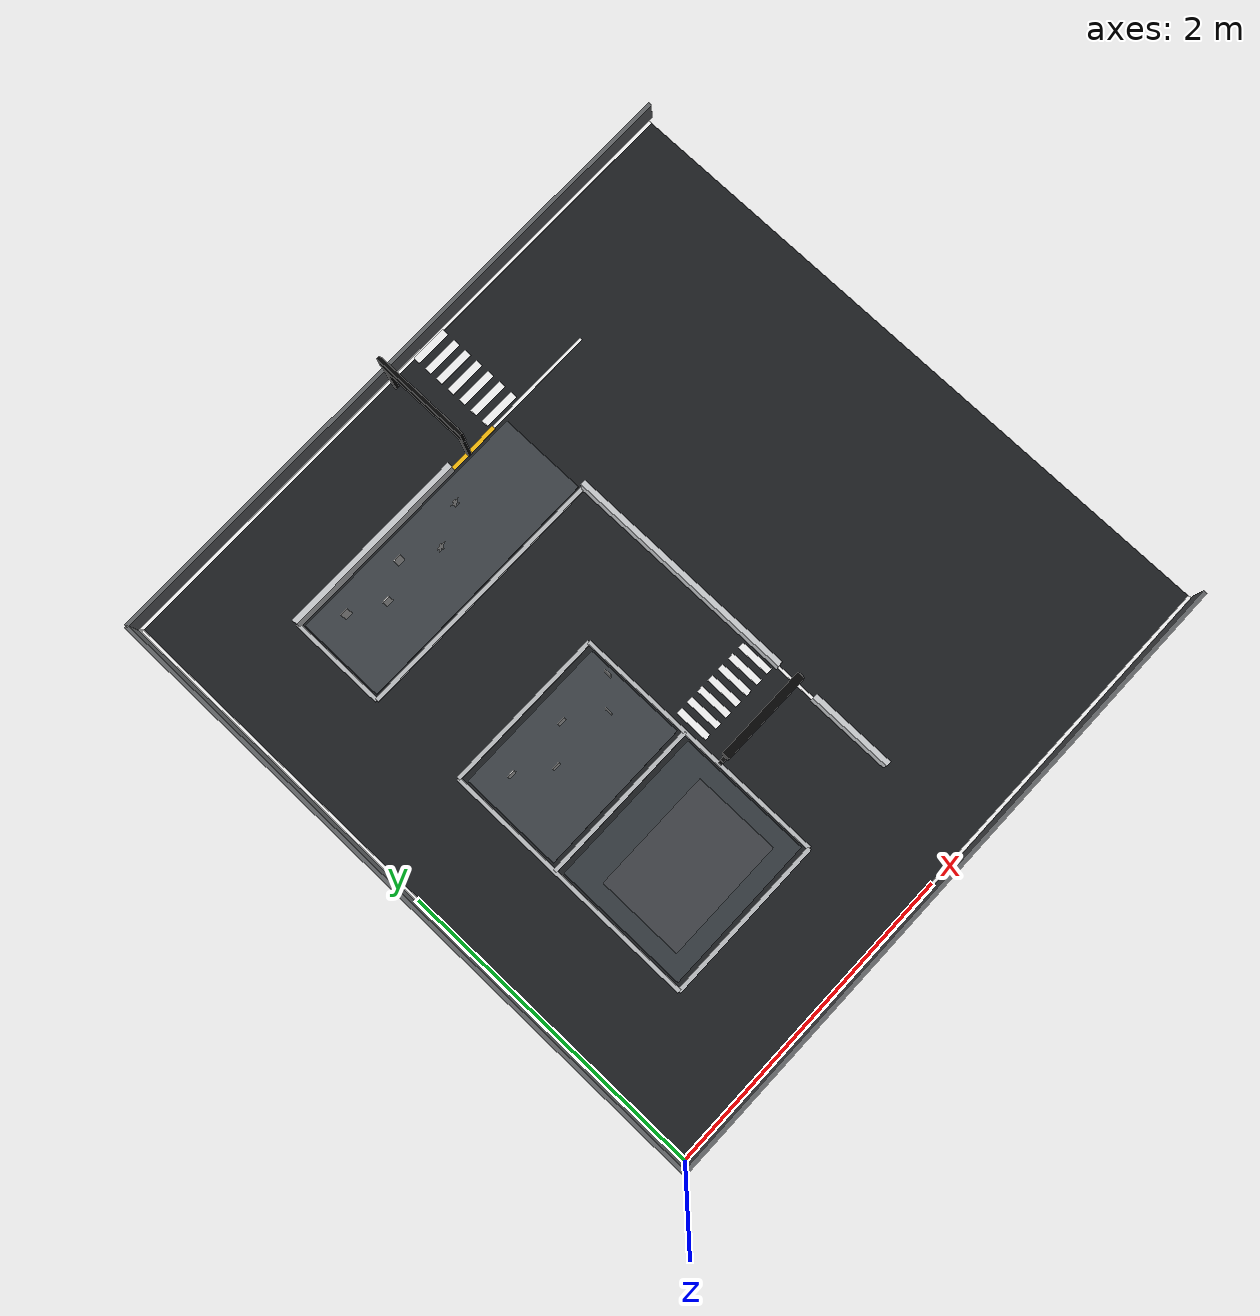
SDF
<sdf version="1.10">
 <world name="smart_community">
  <model name="ground">
   <static>true</static>
   <pose>2.1000000000000001 2.1000000000000001 -0.01 0 0 0</pose>
   <link name="link">
    <collision name="collision">
     <geometry><box><size>4.2000000000000002 4.2000000000000002 0.02</size></box></geometry>
    </collision>
    <visual name="visual">
     <geometry><box><size>4.2000000000000002 4.2000000000000002 0.02</size></box></geometry>
     <material>
      <ambient>0.109999999 0.119999997 0.129999995 1</ambient>
      <diffuse>0.109999999 0.119999997 0.129999995 1</diffuse>
     </material>
    </visual>
    <inertial>
     <mass>1</mass>
     <inertia><ixx>1</ixx><ixy>0</ixy><ixz>0</ixz><iyy>1</iyy><iyz>0</iyz><izz>1</izz></inertia>
    </inertial>
   </link>
  </model>
  <model name="line_outer_bottom">
   <static>true</static>
   <pose>2.1000000000000001 0 0.0030000000000000001 0 0 0</pose>
   <link name="link">
    <visual name="visual">
     <geometry><box><size>4.2000000000000002 0.017999999999999999 0.0040000000000000001</size></box></geometry>
     <material>
      <ambient>0.949999988 0.949999988 0.949999988 1</ambient>
      <diffuse>0.949999988 0.949999988 0.949999988 1</diffuse>
     </material>
    </visual>
    <inertial>
     <mass>1</mass>
     <inertia><ixx>1</ixx><ixy>0</ixy><ixz>0</ixz><iyy>1</iyy><iyz>0</iyz><izz>1</izz></inertia>
    </inertial>
   </link>
  </model>
  <model name="line_outer_top">
   <static>true</static>
   <pose>2.1000000000000001 4.2000000000000002 0.0030000000000000001 0 0 0</pose>
   <link name="link">
    <visual name="visual">
     <geometry><box><size>4.2000000000000002 0.017999999999999999 0.0040000000000000001</size></box></geometry>
     <material>
      <ambient>0.949999988 0.949999988 0.949999988 1</ambient>
      <diffuse>0.949999988 0.949999988 0.949999988 1</diffuse>
     </material>
    </visual>
    <inertial>
     <mass>1</mass>
     <inertia><ixx>1</ixx><ixy>0</ixy><ixz>0</ixz><iyy>1</iyy><iyz>0</iyz><izz>1</izz></inertia>
    </inertial>
   </link>
  </model>
  <model name="line_outer_left">
   <static>true</static>
   <pose>0 2.1000000000000001 0.0030000000000000001 0 0 0</pose>
   <link name="link">
    <visual name="visual">
     <geometry><box><size>0.017999999999999999 4.2000000000000002 0.0040000000000000001</size></box></geometry>
     <material>
      <ambient>0.949999988 0.949999988 0.949999988 1</ambient>
      <diffuse>0.949999988 0.949999988 0.949999988 1</diffuse>
     </material>
    </visual>
    <inertial>
     <mass>1</mass>
     <inertia><ixx>1</ixx><ixy>0</ixy><ixz>0</ixz><iyy>1</iyy><iyz>0</iyz><izz>1</izz></inertia>
    </inertial>
   </link>
  </model>
  <model name="wall_outer_bottom">
   <static>true</static>
   <pose>2.1000000000000001 -0.025000000000000001 0.080000000000000002 0 0 0</pose>
   <link name="link">
    <collision name="collision">
     <geometry><box><size>4.25 0.025000000000000001 0.16</size></box></geometry>
    </collision>
    <visual name="visual">
     <geometry><box><size>4.25 0.025000000000000001 0.16</size></box></geometry>
     <material>
      <ambient>0.379999995 0.389999986 0.400000006 1</ambient>
      <diffuse>0.379999995 0.389999986 0.400000006 1</diffuse>
     </material>
    </visual>
    <inertial>
     <mass>1</mass>
     <inertia><ixx>1</ixx><ixy>0</ixy><ixz>0</ixz><iyy>1</iyy><iyz>0</iyz><izz>1</izz></inertia>
    </inertial>
   </link>
  </model>
  <model name="wall_outer_top">
   <static>true</static>
   <pose>2.1000000000000001 4.2249999999999996 0.080000000000000002 0 0 0</pose>
   <link name="link">
    <collision name="collision">
     <geometry><box><size>4.25 0.025000000000000001 0.16</size></box></geometry>
    </collision>
    <visual name="visual">
     <geometry><box><size>4.25 0.025000000000000001 0.16</size></box></geometry>
     <material>
      <ambient>0.379999995 0.389999986 0.400000006 1</ambient>
      <diffuse>0.379999995 0.389999986 0.400000006 1</diffuse>
     </material>
    </visual>
    <inertial>
     <mass>1</mass>
     <inertia><ixx>1</ixx><ixy>0</ixy><ixz>0</ixz><iyy>1</iyy><iyz>0</iyz><izz>1</izz></inertia>
    </inertial>
   </link>
  </model>
  <model name="wall_outer_left">
   <static>true</static>
   <pose>-0.025000000000000001 2.1000000000000001 0.080000000000000002 0 0 0</pose>
   <link name="link">
    <collision name="collision">
     <geometry><box><size>0.025000000000000001 4.25 0.16</size></box></geometry>
    </collision>
    <visual name="visual">
     <geometry><box><size>0.025000000000000001 4.25 0.16</size></box></geometry>
     <material>
      <ambient>0.379999995 0.389999986 0.400000006 1</ambient>
      <diffuse>0.379999995 0.389999986 0.400000006 1</diffuse>
     </material>
    </visual>
    <inertial>
     <mass>1</mass>
     <inertia><ixx>1</ixx><ixy>0</ixy><ixz>0</ixz><iyy>1</iyy><iyz>0</iyz><izz>1</izz></inertia>
    </inertial>
   </link>
  </model>
  <model name="h_top_block">
   <static>true</static>
   <pose>1.784 3.5720000000000001 0.0030000000000000001 0 0 0</pose>
   <link name="link">
    <visual name="visual">
     <geometry><box><size>2.3119999999999998 0.017999999999999999 0.0040000000000000001</size></box></geometry>
     <material>
      <ambient>0.949999988 0.949999988 0.949999988 1</ambient>
      <diffuse>0.949999988 0.949999988 0.949999988 1</diffuse>
     </material>
    </visual>
    <inertial>
     <mass>1</mass>
     <inertia><ixx>1</ixx><ixy>0</ixy><ixz>0</ixz><iyy>1</iyy><iyz>0</iyz><izz>1</izz></inertia>
    </inertial>
   </link>
  </model>
  <model name="h_A_lower">
   <static>true</static>
   <pose>1.468 2.944 0.0030000000000000001 0 0 0</pose>
   <link name="link">
    <visual name="visual">
     <geometry><box><size>1.6799999999999999 0.017999999999999999 0.0040000000000000001</size></box></geometry>
     <material>
      <ambient>0.949999988 0.949999988 0.949999988 1</ambient>
      <diffuse>0.949999988 0.949999988 0.949999988 1</diffuse>
     </material>
    </visual>
    <inertial>
     <mass>1</mass>
     <inertia><ixx>1</ixx><ixy>0</ixy><ixz>0</ixz><iyy>1</iyy><iyz>0</iyz><izz>1</izz></inertia>
    </inertial>
   </link>
  </model>
  <model name="h_B_top">
   <static>true</static>
   <pose>1.1539999999999999 2.3039999999999998 0.0030000000000000001 0 0 0</pose>
   <link name="link">
    <visual name="visual">
     <geometry><box><size>1.052 0.017999999999999999 0.0040000000000000001</size></box></geometry>
     <material>
      <ambient>0.949999988 0.949999988 0.949999988 1</ambient>
      <diffuse>0.949999988 0.949999988 0.949999988 1</diffuse>
     </material>
    </visual>
    <inertial>
     <mass>1</mass>
     <inertia><ixx>1</ixx><ixy>0</ixy><ixz>0</ixz><iyy>1</iyy><iyz>0</iyz><izz>1</izz></inertia>
    </inertial>
   </link>
  </model>
  <model name="h_B_split">
   <static>true</static>
   <pose>1.1539999999999999 1.5629999999999999 0.0030000000000000001 0 0 0</pose>
   <link name="link">
    <visual name="visual">
     <geometry><box><size>1.052 0.017999999999999999 0.0040000000000000001</size></box></geometry>
     <material>
      <ambient>0.949999988 0.949999988 0.949999988 1</ambient>
      <diffuse>0.949999988 0.949999988 0.949999988 1</diffuse>
     </material>
    </visual>
    <inertial>
     <mass>1</mass>
     <inertia><ixx>1</ixx><ixy>0</ixy><ixz>0</ixz><iyy>1</iyy><iyz>0</iyz><izz>1</izz></inertia>
    </inertial>
   </link>
  </model>
  <model name="h_B_bottom">
   <static>true</static>
   <pose>1.1539999999999999 0.624 0.0030000000000000001 0 0 0</pose>
   <link name="link">
    <visual name="visual">
     <geometry><box><size>1.052 0.017999999999999999 0.0040000000000000001</size></box></geometry>
     <material>
      <ambient>0.949999988 0.949999988 0.949999988 1</ambient>
      <diffuse>0.949999988 0.949999988 0.949999988 1</diffuse>
     </material>
    </visual>
    <inertial>
     <mass>1</mass>
     <inertia><ixx>1</ixx><ixy>0</ixy><ixz>0</ixz><iyy>1</iyy><iyz>0</iyz><izz>1</izz></inertia>
    </inertial>
   </link>
  </model>
  <model name="v_A_left">
   <static>true</static>
   <pose>0.628 3.258 0.0030000000000000001 0 0 0</pose>
   <link name="link">
    <visual name="visual">
     <geometry><box><size>0.017999999999999999 0.628 0.0040000000000000001</size></box></geometry>
     <material>
      <ambient>0.949999988 0.949999988 0.949999988 1</ambient>
      <diffuse>0.949999988 0.949999988 0.949999988 1</diffuse>
     </material>
    </visual>
    <inertial>
     <mass>1</mass>
     <inertia><ixx>1</ixx><ixy>0</ixy><ixz>0</ixz><iyy>1</iyy><iyz>0</iyz><izz>1</izz></inertia>
    </inertial>
   </link>
  </model>
  <model name="v_B_left">
   <static>true</static>
   <pose>0.628 1.464 0.0030000000000000001 0 0 0</pose>
   <link name="link">
    <visual name="visual">
     <geometry><box><size>0.017999999999999999 1.6799999999999999 0.0040000000000000001</size></box></geometry>
     <material>
      <ambient>0.949999988 0.949999988 0.949999988 1</ambient>
      <diffuse>0.949999988 0.949999988 0.949999988 1</diffuse>
     </material>
    </visual>
    <inertial>
     <mass>1</mass>
     <inertia><ixx>1</ixx><ixy>0</ixy><ixz>0</ixz><iyy>1</iyy><iyz>0</iyz><izz>1</izz></inertia>
    </inertial>
   </link>
  </model>
  <model name="v_B_right">
   <static>true</static>
   <pose>1.6799999999999999 1.464 0.0030000000000000001 0 0 0</pose>
   <link name="link">
    <visual name="visual">
     <geometry><box><size>0.017999999999999999 1.6799999999999999 0.0040000000000000001</size></box></geometry>
     <material>
      <ambient>0.949999988 0.949999988 0.949999988 1</ambient>
      <diffuse>0.949999988 0.949999988 0.949999988 1</diffuse>
     </material>
    </visual>
    <inertial>
     <mass>1</mass>
     <inertia><ixx>1</ixx><ixy>0</ixy><ixz>0</ixz><iyy>1</iyy><iyz>0</iyz><izz>1</izz></inertia>
    </inertial>
   </link>
  </model>
  <model name="v_center_left">
   <static>true</static>
   <pose>2.3079999999999998 1.784 0.0030000000000000001 0 0 0</pose>
   <link name="link">
    <visual name="visual">
     <geometry><box><size>0.017999999999999999 2.3199999999999998 0.0040000000000000001</size></box></geometry>
     <material>
      <ambient>0.949999988 0.949999988 0.949999988 1</ambient>
      <diffuse>0.949999988 0.949999988 0.949999988 1</diffuse>
     </material>
    </visual>
    <inertial>
     <mass>1</mass>
     <inertia><ixx>1</ixx><ixy>0</ixy><ixz>0</ixz><iyy>1</iyy><iyz>0</iyz><izz>1</izz></inertia>
    </inertial>
   </link>
  </model>
  <model name="crosswalk_top_0">
   <static>true</static>
   <pose>2.3100000000000001 3.6231 0.0040000000000000001 0 0 0</pose>
   <link name="link">
    <visual name="visual">
     <geometry><box><size>0.23999999999999999 0.046199999999999998 0.0040000000000000001</size></box></geometry>
     <material>
      <ambient>0.949999988 0.949999988 0.949999988 1</ambient>
      <diffuse>0.949999988 0.949999988 0.949999988 1</diffuse>
     </material>
    </visual>
    <inertial>
     <mass>1</mass>
     <inertia><ixx>1</ixx><ixy>0</ixy><ixz>0</ixz><iyy>1</iyy><iyz>0</iyz><izz>1</izz></inertia>
    </inertial>
   </link>
  </model>
  <model name="crosswalk_top_1">
   <static>true</static>
   <pose>2.3100000000000001 3.7153999999999998 0.0040000000000000001 0 0 0</pose>
   <link name="link">
    <visual name="visual">
     <geometry><box><size>0.23999999999999999 0.046199999999999998 0.0040000000000000001</size></box></geometry>
     <material>
      <ambient>0.949999988 0.949999988 0.949999988 1</ambient>
      <diffuse>0.949999988 0.949999988 0.949999988 1</diffuse>
     </material>
    </visual>
    <inertial>
     <mass>1</mass>
     <inertia><ixx>1</ixx><ixy>0</ixy><ixz>0</ixz><iyy>1</iyy><iyz>0</iyz><izz>1</izz></inertia>
    </inertial>
   </link>
  </model>
  <model name="crosswalk_top_2">
   <static>true</static>
   <pose>2.3100000000000001 3.8077000000000001 0.0040000000000000001 0 0 0</pose>
   <link name="link">
    <visual name="visual">
     <geometry><box><size>0.23999999999999999 0.046199999999999998 0.0040000000000000001</size></box></geometry>
     <material>
      <ambient>0.949999988 0.949999988 0.949999988 1</ambient>
      <diffuse>0.949999988 0.949999988 0.949999988 1</diffuse>
     </material>
    </visual>
    <inertial>
     <mass>1</mass>
     <inertia><ixx>1</ixx><ixy>0</ixy><ixz>0</ixz><iyy>1</iyy><iyz>0</iyz><izz>1</izz></inertia>
    </inertial>
   </link>
  </model>
  <model name="crosswalk_top_3">
   <static>true</static>
   <pose>2.3100000000000001 3.8999999999999999 0.0040000000000000001 0 0 0</pose>
   <link name="link">
    <visual name="visual">
     <geometry><box><size>0.23999999999999999 0.046199999999999998 0.0040000000000000001</size></box></geometry>
     <material>
      <ambient>0.949999988 0.949999988 0.949999988 1</ambient>
      <diffuse>0.949999988 0.949999988 0.949999988 1</diffuse>
     </material>
    </visual>
    <inertial>
     <mass>1</mass>
     <inertia><ixx>1</ixx><ixy>0</ixy><ixz>0</ixz><iyy>1</iyy><iyz>0</iyz><izz>1</izz></inertia>
    </inertial>
   </link>
  </model>
  <model name="crosswalk_top_4">
   <static>true</static>
   <pose>2.3100000000000001 3.9923000000000002 0.0040000000000000001 0 0 0</pose>
   <link name="link">
    <visual name="visual">
     <geometry><box><size>0.23999999999999999 0.046199999999999998 0.0040000000000000001</size></box></geometry>
     <material>
      <ambient>0.949999988 0.949999988 0.949999988 1</ambient>
      <diffuse>0.949999988 0.949999988 0.949999988 1</diffuse>
     </material>
    </visual>
    <inertial>
     <mass>1</mass>
     <inertia><ixx>1</ixx><ixy>0</ixy><ixz>0</ixz><iyy>1</iyy><iyz>0</iyz><izz>1</izz></inertia>
    </inertial>
   </link>
  </model>
  <model name="crosswalk_top_5">
   <static>true</static>
   <pose>2.3100000000000001 4.0846 0.0040000000000000001 0 0 0</pose>
   <link name="link">
    <visual name="visual">
     <geometry><box><size>0.23999999999999999 0.046199999999999998 0.0040000000000000001</size></box></geometry>
     <material>
      <ambient>0.949999988 0.949999988 0.949999988 1</ambient>
      <diffuse>0.949999988 0.949999988 0.949999988 1</diffuse>
     </material>
    </visual>
    <inertial>
     <mass>1</mass>
     <inertia><ixx>1</ixx><ixy>0</ixy><ixz>0</ixz><iyy>1</iyy><iyz>0</iyz><izz>1</izz></inertia>
    </inertial>
   </link>
  </model>
  <model name="crosswalk_top_6">
   <static>true</static>
   <pose>2.3100000000000001 4.1768999999999998 0.0040000000000000001 0 0 0</pose>
   <link name="link">
    <visual name="visual">
     <geometry><box><size>0.23999999999999999 0.046199999999999998 0.0040000000000000001</size></box></geometry>
     <material>
      <ambient>0.949999988 0.949999988 0.949999988 1</ambient>
      <diffuse>0.949999988 0.949999988 0.949999988 1</diffuse>
     </material>
    </visual>
    <inertial>
     <mass>1</mass>
     <inertia><ixx>1</ixx><ixy>0</ixy><ixz>0</ixz><iyy>1</iyy><iyz>0</iyz><izz>1</izz></inertia>
    </inertial>
   </link>
  </model>
  <model name="crosswalk_mid_0">
   <static>true</static>
   <pose>1.7462 1.5600000000000001 0.0040000000000000001 0 0 0</pose>
   <link name="link">
    <visual name="visual">
     <geometry><box><size>0.042299999999999997 0.22 0.0040000000000000001</size></box></geometry>
     <material>
      <ambient>0.949999988 0.949999988 0.949999988 1</ambient>
      <diffuse>0.949999988 0.949999988 0.949999988 1</diffuse>
     </material>
    </visual>
    <inertial>
     <mass>1</mass>
     <inertia><ixx>1</ixx><ixy>0</ixy><ixz>0</ixz><iyy>1</iyy><iyz>0</iyz><izz>1</izz></inertia>
    </inertial>
   </link>
  </model>
  <model name="crosswalk_mid_1">
   <static>true</static>
   <pose>1.8308 1.5600000000000001 0.0040000000000000001 0 0 0</pose>
   <link name="link">
    <visual name="visual">
     <geometry><box><size>0.042299999999999997 0.22 0.0040000000000000001</size></box></geometry>
     <material>
      <ambient>0.949999988 0.949999988 0.949999988 1</ambient>
      <diffuse>0.949999988 0.949999988 0.949999988 1</diffuse>
     </material>
    </visual>
    <inertial>
     <mass>1</mass>
     <inertia><ixx>1</ixx><ixy>0</ixy><ixz>0</ixz><iyy>1</iyy><iyz>0</iyz><izz>1</izz></inertia>
    </inertial>
   </link>
  </model>
  <model name="crosswalk_mid_2">
   <static>true</static>
   <pose>1.9154 1.5600000000000001 0.0040000000000000001 0 0 0</pose>
   <link name="link">
    <visual name="visual">
     <geometry><box><size>0.042299999999999997 0.22 0.0040000000000000001</size></box></geometry>
     <material>
      <ambient>0.949999988 0.949999988 0.949999988 1</ambient>
      <diffuse>0.949999988 0.949999988 0.949999988 1</diffuse>
     </material>
    </visual>
    <inertial>
     <mass>1</mass>
     <inertia><ixx>1</ixx><ixy>0</ixy><ixz>0</ixz><iyy>1</iyy><iyz>0</iyz><izz>1</izz></inertia>
    </inertial>
   </link>
  </model>
  <model name="crosswalk_mid_3">
   <static>true</static>
   <pose>2 1.5600000000000001 0.0040000000000000001 0 0 0</pose>
   <link name="link">
    <visual name="visual">
     <geometry><box><size>0.042299999999999997 0.22 0.0040000000000000001</size></box></geometry>
     <material>
      <ambient>0.949999988 0.949999988 0.949999988 1</ambient>
      <diffuse>0.949999988 0.949999988 0.949999988 1</diffuse>
     </material>
    </visual>
    <inertial>
     <mass>1</mass>
     <inertia><ixx>1</ixx><ixy>0</ixy><ixz>0</ixz><iyy>1</iyy><iyz>0</iyz><izz>1</izz></inertia>
    </inertial>
   </link>
  </model>
  <model name="crosswalk_mid_4">
   <static>true</static>
   <pose>2.0846 1.5600000000000001 0.0040000000000000001 0 0 0</pose>
   <link name="link">
    <visual name="visual">
     <geometry><box><size>0.042299999999999997 0.22 0.0040000000000000001</size></box></geometry>
     <material>
      <ambient>0.949999988 0.949999988 0.949999988 1</ambient>
      <diffuse>0.949999988 0.949999988 0.949999988 1</diffuse>
     </material>
    </visual>
    <inertial>
     <mass>1</mass>
     <inertia><ixx>1</ixx><ixy>0</ixy><ixz>0</ixz><iyy>1</iyy><iyz>0</iyz><izz>1</izz></inertia>
    </inertial>
   </link>
  </model>
  <model name="crosswalk_mid_5">
   <static>true</static>
   <pose>2.1692 1.5600000000000001 0.0040000000000000001 0 0 0</pose>
   <link name="link">
    <visual name="visual">
     <geometry><box><size>0.042299999999999997 0.22 0.0040000000000000001</size></box></geometry>
     <material>
      <ambient>0.949999988 0.949999988 0.949999988 1</ambient>
      <diffuse>0.949999988 0.949999988 0.949999988 1</diffuse>
     </material>
    </visual>
    <inertial>
     <mass>1</mass>
     <inertia><ixx>1</ixx><ixy>0</ixy><ixz>0</ixz><iyy>1</iyy><iyz>0</iyz><izz>1</izz></inertia>
    </inertial>
   </link>
  </model>
  <model name="crosswalk_mid_6">
   <static>true</static>
   <pose>2.2538 1.5600000000000001 0.0040000000000000001 0 0 0</pose>
   <link name="link">
    <visual name="visual">
     <geometry><box><size>0.042299999999999997 0.22 0.0040000000000000001</size></box></geometry>
     <material>
      <ambient>0.949999988 0.949999988 0.949999988 1</ambient>
      <diffuse>0.949999988 0.949999988 0.949999988 1</diffuse>
     </material>
    </visual>
    <inertial>
     <mass>1</mass>
     <inertia><ixx>1</ixx><ixy>0</ixy><ixz>0</ixz><iyy>1</iyy><iyz>0</iyz><izz>1</izz></inertia>
    </inertial>
   </link>
  </model>
  <model name="stopline_top">
   <static>true</static>
   <pose>2.02 3.5699999999999998 0.0040000000000000001 0 0 0</pose>
   <link name="link">
    <visual name="visual">
     <geometry><box><size>0.38 0.025000000000000001 0.0040000000000000001</size></box></geometry>
     <material>
      <ambient>0.949999988 0.720000029 0.0500000007 1</ambient>
      <diffuse>0.949999988 0.720000029 0.0500000007 1</diffuse>
     </material>
    </visual>
    <inertial>
     <mass>1</mass>
     <inertia><ixx>1</ixx><ixy>0</ixy><ixz>0</ixz><iyy>1</iyy><iyz>0</iyz><izz>1</izz></inertia>
    </inertial>
   </link>
  </model>
  <include>
   <uri>file:///home/biao/aic_ws/install/smart_community_gazebo/share/smart_community_gazebo/models/community_person_01</uri>
   <name>A_person_1</name>
   <pose>0.85999999999999999 3.3999999999999999 0 0 0 1.5707959999999999</pose>
  </include>
  <include>
   <uri>file:///home/biao/aic_ws/install/smart_community_gazebo/share/smart_community_gazebo/models/community_person_02</uri>
   <name>A_person_2</name>
   <pose>1.0700000000000001 3.2799999999999998 0 0 0 1.5707959999999999</pose>
  </include>
  <include>
   <uri>file:///home/biao/aic_ws/install/smart_community_gazebo/share/smart_community_gazebo/models/noncommunity_person_F1</uri>
   <name>A_person_3</name>
   <pose>1.28 3.3999999999999999 0 0 0 1.5707959999999999</pose>
  </include>
  <include>
   <uri>file:///home/biao/aic_ws/install/smart_community_gazebo/share/smart_community_gazebo/models/community_person_03</uri>
   <name>A_person_4</name>
   <pose>1.5 3.2799999999999998 0 0 0 1.5707959999999999</pose>
  </include>
  <include>
   <uri>file:///home/biao/aic_ws/install/smart_community_gazebo/share/smart_community_gazebo/models/community_person_04</uri>
   <name>A_person_5</name>
   <pose>1.73 3.3999999999999999 0 0 0 1.5707959999999999</pose>
  </include>
  <include>
   <uri>file:///home/biao/aic_ws/install/smart_community_gazebo/share/smart_community_gazebo/models/community_person_05</uri>
   <name>B_person_1</name>
   <pose>0.84999999999999998 2.1000000000000001 0 0 0 1.5707959999999999</pose>
  </include>
  <include>
   <uri>file:///home/biao/aic_ws/install/smart_community_gazebo/share/smart_community_gazebo/models/community_person_06</uri>
   <name>B_person_2</name>
   <pose>1.05 1.95 0 0 0 1.5707959999999999</pose>
  </include>
  <include>
   <uri>file:///home/biao/aic_ws/install/smart_community_gazebo/share/smart_community_gazebo/models/noncommunity_person_F2</uri>
   <name>B_person_3</name>
   <pose>1.25 2.1000000000000001 0 0 0 1.5707959999999999</pose>
  </include>
  <include>
   <uri>file:///home/biao/aic_ws/install/smart_community_gazebo/share/smart_community_gazebo/models/community_person_07</uri>
   <name>B_person_4</name>
   <pose>1.47 1.95 0 0 0 0</pose>
  </include>
  <include>
   <uri>file:///home/biao/aic_ws/install/smart_community_gazebo/share/smart_community_gazebo/models/community_person_08</uri>
   <name>B_person_5</name>
   <pose>1.6200000000000001 2.1000000000000001 0 0 0 0</pose>
  </include>
  <model name="plaza_A">
   <static>true</static>
   <pose>1.47 3.2549999999999999 0.0040000000000000001 0 0 0</pose>
   <link name="link">
    <visual name="visual">
     <geometry><box><size>1.6399999999999999 0.56999999999999995 0.0080000000000000002</size></box></geometry>
     <material>
      <ambient>0.230000004 0.25 0.270000011 1</ambient>
      <diffuse>0.230000004 0.25 0.270000011 1</diffuse>
     </material>
    </visual>
    <inertial>
     <mass>1</mass>
     <inertia><ixx>1</ixx><ixy>0</ixy><ixz>0</ixz><iyy>1</iyy><iyz>0</iyz><izz>1</izz></inertia>
    </inertial>
   </link>
  </model>
  <model name="plaza_B_people">
   <static>true</static>
   <pose>1.155 1.9299999999999999 0.0040000000000000001 0 0 0</pose>
   <link name="link">
    <visual name="visual">
     <geometry><box><size>1 0.66000000000000003 0.0080000000000000002</size></box></geometry>
     <material>
      <ambient>0.230000004 0.25 0.270000011 1</ambient>
      <diffuse>0.230000004 0.25 0.270000011 1</diffuse>
     </material>
    </visual>
    <inertial>
     <mass>1</mass>
     <inertia><ixx>1</ixx><ixy>0</ixy><ixz>0</ixz><iyy>1</iyy><iyz>0</iyz><izz>1</izz></inertia>
    </inertial>
   </link>
  </model>
  <model name="plaza_B_lower">
   <static>true</static>
   <pose>1.155 1.0900000000000001 0.0040000000000000001 0 0 0</pose>
   <link name="link">
    <visual name="visual">
     <geometry><box><size>1 0.85999999999999999 0.0080000000000000002</size></box></geometry>
     <material>
      <ambient>0.200000003 0.219999999 0.239999995 1</ambient>
      <diffuse>0.200000003 0.219999999 0.239999995 1</diffuse>
     </material>
    </visual>
    <inertial>
     <mass>1</mass>
     <inertia><ixx>1</ixx><ixy>0</ixy><ixz>0</ixz><iyy>1</iyy><iyz>0</iyz><izz>1</izz></inertia>
    </inertial>
   </link>
  </model>
  <model name="building_B_lower">
   <static>true</static>
   <pose>1.155 1.0549999999999999 0 0 0 0</pose>
   <link name="body">
    <collision name="collision">
     <pose>0 0 0.14000000000000001 0 0 0</pose>
     <geometry><box><size>0.69999999999999996 0.47999999999999998 0.28000000000000003</size></box></geometry>
    </collision>
    <visual name="wall">
     <pose>0 0 0.14000000000000001 0 0 0</pose>
     <geometry><box><size>0.69999999999999996 0.47999999999999998 0.28000000000000003</size></box></geometry>
     <material>
      <ambient>0.699999988 0.689999998 0.649999976 1</ambient>
      <diffuse>0.699999988 0.689999998 0.649999976 1</diffuse>
     </material>
    </visual>
    <visual name="roof">
     <pose>0 0 0.30499999999999999 0 0 0</pose>
     <geometry><box><size>0.755 0.53500000000000003 0.050000000000000003</size></box></geometry>
     <material>
      <ambient>0.239999995 0.25 0.270000011 1</ambient>
      <diffuse>0.239999995 0.25 0.270000011 1</diffuse>
     </material>
    </visual>
    <visual name="window_l">
     <pose>-0.182 -0.246 0.15679999999999999 0 0 0</pose>
     <geometry><box><size>0.13300000000000001 0.0080000000000000002 0.064399999999999999</size></box></geometry>
     <material>
      <ambient>0.180000007 0.340000004 0.479999989 1</ambient>
      <diffuse>0.180000007 0.340000004 0.479999989 1</diffuse>
     </material>
    </visual>
    <visual name="window_r">
     <pose>0.182 -0.246 0.15679999999999999 0 0 0</pose>
     <geometry><box><size>0.13300000000000001 0.0080000000000000002 0.064399999999999999</size></box></geometry>
     <material>
      <ambient>0.180000007 0.340000004 0.479999989 1</ambient>
      <diffuse>0.180000007 0.340000004 0.479999989 1</diffuse>
     </material>
    </visual>
    <visual name="door">
     <pose>0 -0.247 0.064399999999999999 0 0 0</pose>
     <geometry><box><size>0.126 0.0089999999999999993 0.1288</size></box></geometry>
     <material>
      <ambient>0.239999995 0.25 0.270000011 1</ambient>
      <diffuse>0.239999995 0.25 0.270000011 1</diffuse>
     </material>
    </visual>
    <inertial>
     <mass>1</mass>
     <inertia><ixx>1</ixx><ixy>0</ixy><ixz>0</ixz><iyy>1</iyy><iyz>0</iyz><izz>1</izz></inertia>
    </inertial>
   </link>
  </model>
  <model name="curb_A_lower">
   <static>true</static>
   <pose>1.468 2.944 0.012500000000000001 0 0 0</pose>
   <link name="link">
    <collision name="collision">
     <geometry><box><size>1.6799999999999999 0.025000000000000001 0.025000000000000001</size></box></geometry>
    </collision>
    <visual name="visual">
     <geometry><box><size>1.6799999999999999 0.025000000000000001 0.025000000000000001</size></box></geometry>
     <material>
      <ambient>0.720000029 0.730000019 0.74000001 1</ambient>
      <diffuse>0.720000029 0.730000019 0.74000001 1</diffuse>
     </material>
    </visual>
    <inertial>
     <mass>1</mass>
     <inertia><ixx>1</ixx><ixy>0</ixy><ixz>0</ixz><iyy>1</iyy><iyz>0</iyz><izz>1</izz></inertia>
    </inertial>
   </link>
  </model>
  <model name="curb_A_left">
   <static>true</static>
   <pose>0.628 3.258 0.012500000000000001 0 0 0</pose>
   <link name="link">
    <collision name="collision">
     <geometry><box><size>0.025000000000000001 0.628 0.025000000000000001</size></box></geometry>
    </collision>
    <visual name="visual">
     <geometry><box><size>0.025000000000000001 0.628 0.025000000000000001</size></box></geometry>
     <material>
      <ambient>0.720000029 0.730000019 0.74000001 1</ambient>
      <diffuse>0.720000029 0.730000019 0.74000001 1</diffuse>
     </material>
    </visual>
    <inertial>
     <mass>1</mass>
     <inertia><ixx>1</ixx><ixy>0</ixy><ixz>0</ixz><iyy>1</iyy><iyz>0</iyz><izz>1</izz></inertia>
    </inertial>
   </link>
  </model>
  <model name="curb_B_top">
   <static>true</static>
   <pose>1.1539999999999999 2.3039999999999998 0.012500000000000001 0 0 0</pose>
   <link name="link">
    <collision name="collision">
     <geometry><box><size>1.052 0.025000000000000001 0.025000000000000001</size></box></geometry>
    </collision>
    <visual name="visual">
     <geometry><box><size>1.052 0.025000000000000001 0.025000000000000001</size></box></geometry>
     <material>
      <ambient>0.720000029 0.730000019 0.74000001 1</ambient>
      <diffuse>0.720000029 0.730000019 0.74000001 1</diffuse>
     </material>
    </visual>
    <inertial>
     <mass>1</mass>
     <inertia><ixx>1</ixx><ixy>0</ixy><ixz>0</ixz><iyy>1</iyy><iyz>0</iyz><izz>1</izz></inertia>
    </inertial>
   </link>
  </model>
  <model name="curb_B_split">
   <static>true</static>
   <pose>1.1539999999999999 1.5629999999999999 0.012500000000000001 0 0 0</pose>
   <link name="link">
    <collision name="collision">
     <geometry><box><size>1.052 0.025000000000000001 0.025000000000000001</size></box></geometry>
    </collision>
    <visual name="visual">
     <geometry><box><size>1.052 0.025000000000000001 0.025000000000000001</size></box></geometry>
     <material>
      <ambient>0.720000029 0.730000019 0.74000001 1</ambient>
      <diffuse>0.720000029 0.730000019 0.74000001 1</diffuse>
     </material>
    </visual>
    <inertial>
     <mass>1</mass>
     <inertia><ixx>1</ixx><ixy>0</ixy><ixz>0</ixz><iyy>1</iyy><iyz>0</iyz><izz>1</izz></inertia>
    </inertial>
   </link>
  </model>
  <model name="curb_B_bottom">
   <static>true</static>
   <pose>1.1539999999999999 0.624 0.012500000000000001 0 0 0</pose>
   <link name="link">
    <collision name="collision">
     <geometry><box><size>1.052 0.025000000000000001 0.025000000000000001</size></box></geometry>
    </collision>
    <visual name="visual">
     <geometry><box><size>1.052 0.025000000000000001 0.025000000000000001</size></box></geometry>
     <material>
      <ambient>0.720000029 0.730000019 0.74000001 1</ambient>
      <diffuse>0.720000029 0.730000019 0.74000001 1</diffuse>
     </material>
    </visual>
    <inertial>
     <mass>1</mass>
     <inertia><ixx>1</ixx><ixy>0</ixy><ixz>0</ixz><iyy>1</iyy><iyz>0</iyz><izz>1</izz></inertia>
    </inertial>
   </link>
  </model>
  <model name="curb_B_left">
   <static>true</static>
   <pose>0.628 1.464 0.012500000000000001 0 0 0</pose>
   <link name="link">
    <collision name="collision">
     <geometry><box><size>0.025000000000000001 1.6799999999999999 0.025000000000000001</size></box></geometry>
    </collision>
    <visual name="visual">
     <geometry><box><size>0.025000000000000001 1.6799999999999999 0.025000000000000001</size></box></geometry>
     <material>
      <ambient>0.720000029 0.730000019 0.74000001 1</ambient>
      <diffuse>0.720000029 0.730000019 0.74000001 1</diffuse>
     </material>
    </visual>
    <inertial>
     <mass>1</mass>
     <inertia><ixx>1</ixx><ixy>0</ixy><ixz>0</ixz><iyy>1</iyy><iyz>0</iyz><izz>1</izz></inertia>
    </inertial>
   </link>
  </model>
  <model name="curb_B_right">
   <static>true</static>
   <pose>1.6799999999999999 1.464 0.012500000000000001 0 0 0</pose>
   <link name="link">
    <collision name="collision">
     <geometry><box><size>0.025000000000000001 1.6799999999999999 0.025000000000000001</size></box></geometry>
    </collision>
    <visual name="visual">
     <geometry><box><size>0.025000000000000001 1.6799999999999999 0.025000000000000001</size></box></geometry>
     <material>
      <ambient>0.720000029 0.730000019 0.74000001 1</ambient>
      <diffuse>0.720000029 0.730000019 0.74000001 1</diffuse>
     </material>
    </visual>
    <inertial>
     <mass>1</mass>
     <inertia><ixx>1</ixx><ixy>0</ixy><ixz>0</ixz><iyy>1</iyy><iyz>0</iyz><izz>1</izz></inertia>
    </inertial>
   </link>
  </model>
  <model name="solid_h_top_block_left">
   <static>true</static>
   <pose>1.2490000000000001 3.5720000000000001 0.052499999999999998 0 0 0</pose>
   <link name="link">
    <collision name="collision">
     <geometry><box><size>1.242 0.035000000000000003 0.105</size></box></geometry>
    </collision>
    <visual name="visual">
     <geometry><box><size>1.242 0.035000000000000003 0.105</size></box></geometry>
     <material>
      <ambient>0.779999971 0.790000021 0.800000012 1</ambient>
      <diffuse>0.779999971 0.790000021 0.800000012 1</diffuse>
     </material>
    </visual>
    <inertial>
     <mass>1</mass>
     <inertia><ixx>1</ixx><ixy>0</ixy><ixz>0</ixz><iyy>1</iyy><iyz>0</iyz><izz>1</izz></inertia>
    </inertial>
   </link>
  </model>
  <model name="solid_v_center_left_lower">
   <static>true</static>
   <pose>2.3079999999999998 0.89700000000000002 0.072499999999999995 0 0 0</pose>
   <link name="link">
    <collision name="collision">
     <geometry><box><size>0.035000000000000003 0.54600000000000004 0.14499999999999999</size></box></geometry>
    </collision>
    <visual name="visual">
     <geometry><box><size>0.035000000000000003 0.54600000000000004 0.14499999999999999</size></box></geometry>
     <material>
      <ambient>0.779999971 0.790000021 0.800000012 1</ambient>
      <diffuse>0.779999971 0.790000021 0.800000012 1</diffuse>
     </material>
    </visual>
    <inertial>
     <mass>1</mass>
     <inertia><ixx>1</ixx><ixy>0</ixy><ixz>0</ixz><iyy>1</iyy><iyz>0</iyz><izz>1</izz></inertia>
    </inertial>
   </link>
  </model>
  <model name="solid_v_center_left_upper">
   <static>true</static>
   <pose>2.3079999999999998 2.1869999999999998 0.072499999999999995 0 0 0</pose>
   <link name="link">
    <collision name="collision">
     <geometry><box><size>0.035000000000000003 1.514 0.14499999999999999</size></box></geometry>
    </collision>
    <visual name="visual">
     <geometry><box><size>0.035000000000000003 1.514 0.14499999999999999</size></box></geometry>
     <material>
      <ambient>0.779999971 0.790000021 0.800000012 1</ambient>
      <diffuse>0.779999971 0.790000021 0.800000012 1</diffuse>
     </material>
    </visual>
    <inertial>
     <mass>1</mass>
     <inertia><ixx>1</ixx><ixy>0</ixy><ixz>0</ixz><iyy>1</iyy><iyz>0</iyz><izz>1</izz></inertia>
    </inertial>
   </link>
  </model>
  <include>
   <uri>file:///home/biao/aic_ws/install/smart_community_gazebo/share/smart_community_gazebo/models/traffic_light_red</uri>
   <name>traffic_light_mid_alt</name>
   <pose>2 1.3 0 0 0 -1.5707963267948963</pose>
  </include>
  <include>
   <uri>file:///home/biao/aic_ws/install/smart_community_gazebo/share/smart_community_gazebo/models/traffic_light_green</uri>
   <name>traffic_light_top_alt</name>
   <pose>2 3.8599999999999999 0 0 0 3.1415926535897931</pose>
  </include>
 </world>
</sdf>
